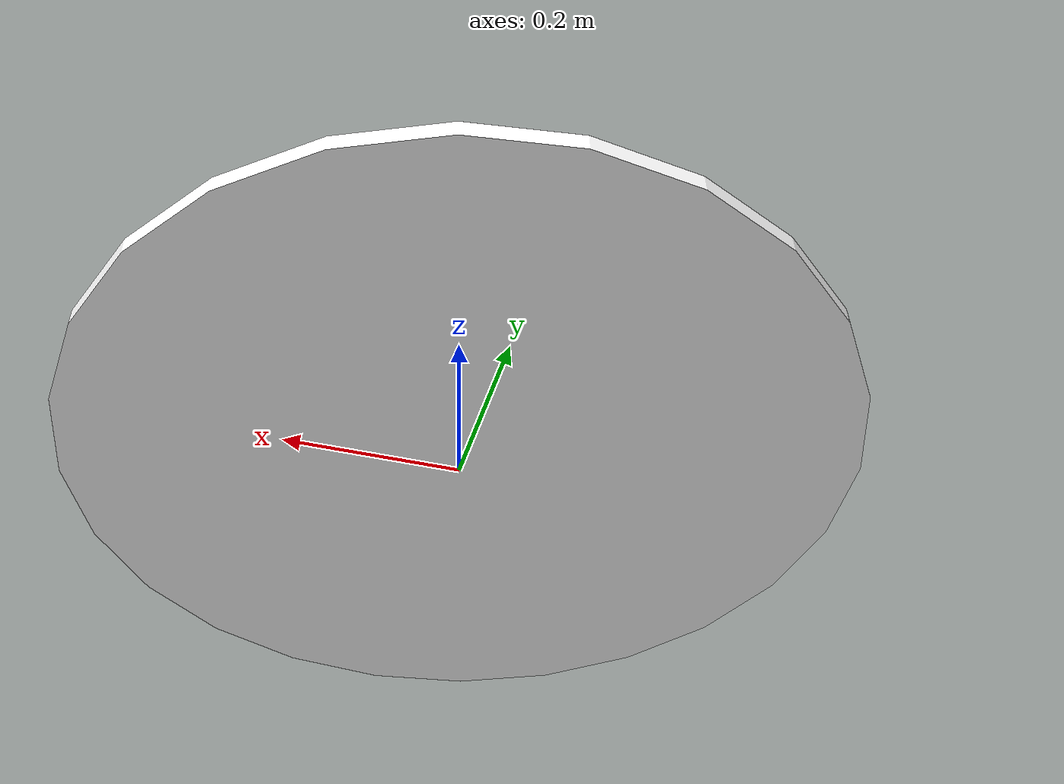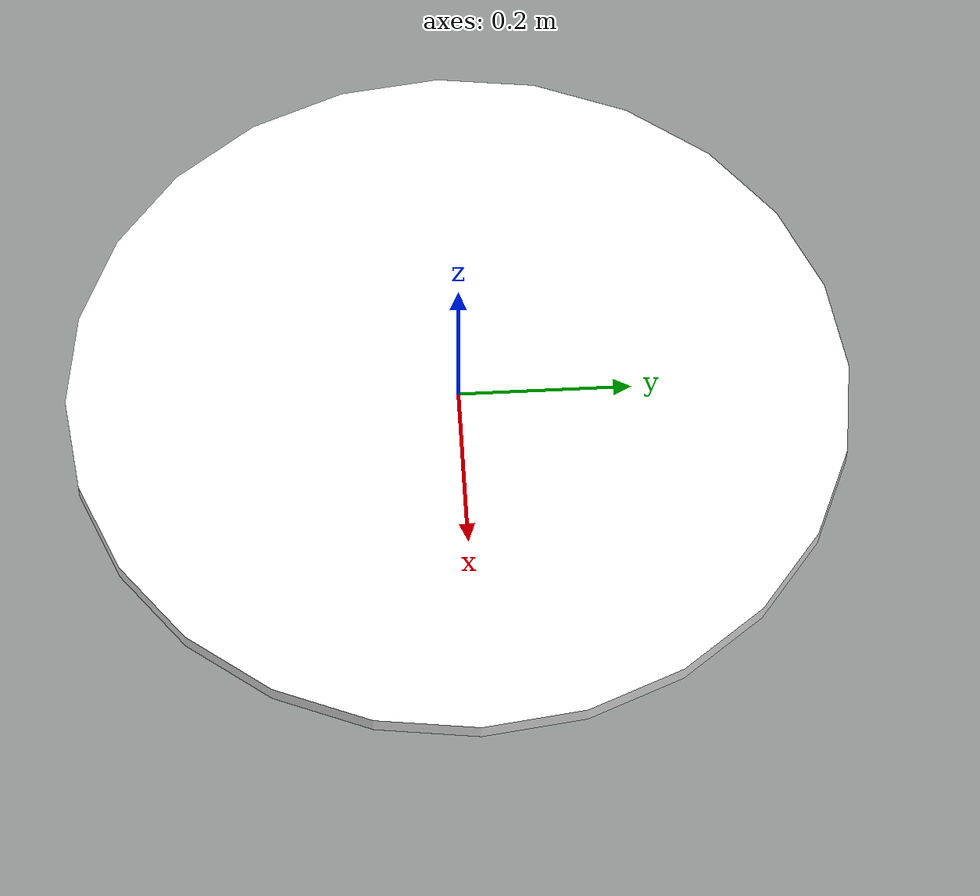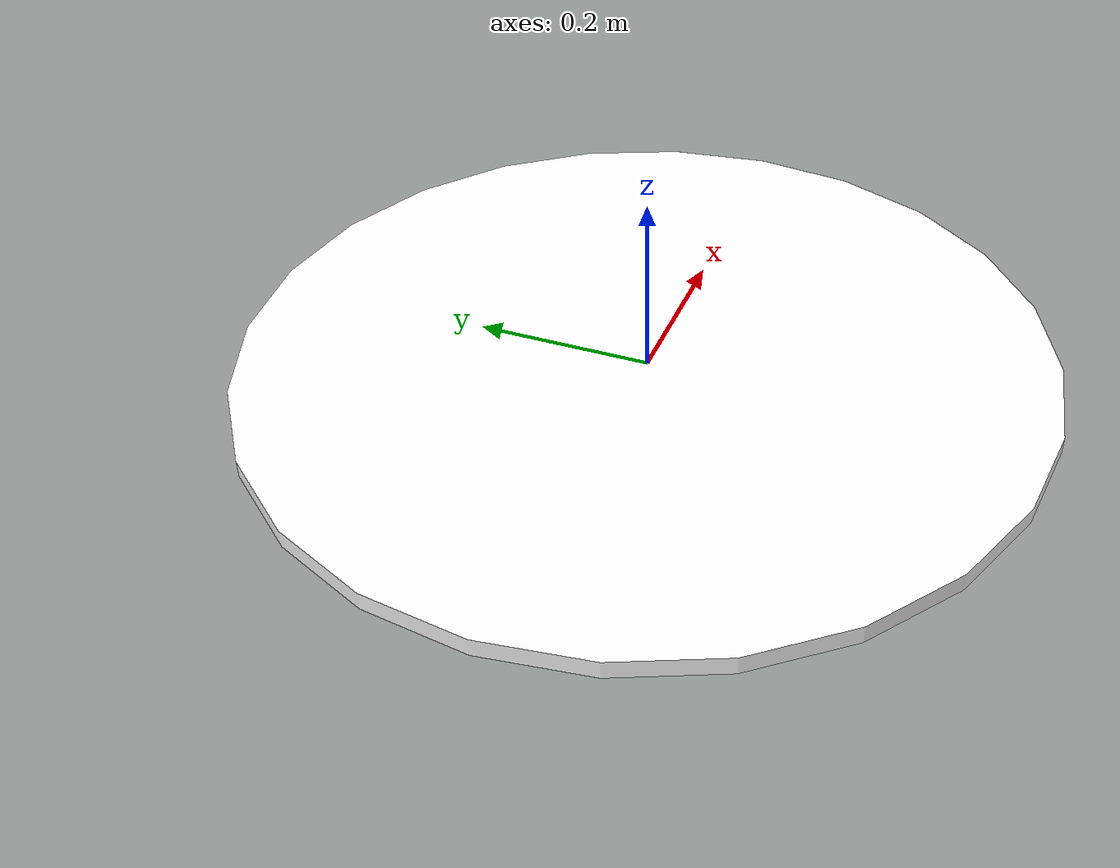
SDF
<?xml version="1.0"?>
<sdf version="1.7"><model name="pothole_disc"><static>true</static><link name="link"><pose>0 0 0.011 0 0 0</pose><visual name="visual"><geometry><cylinder><radius>0.45</radius><length>0.02</length></cylinder></geometry><material><ambient>1 1 1 1</ambient><diffuse>1 1 1 1</diffuse></material></visual></link></model></sdf>
